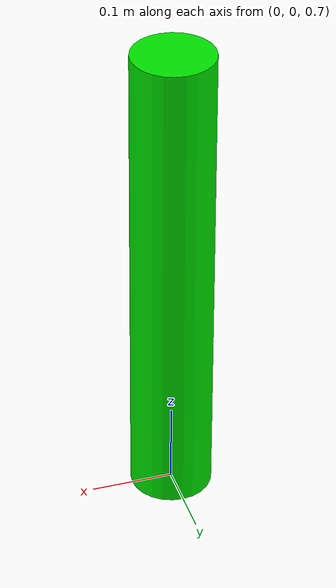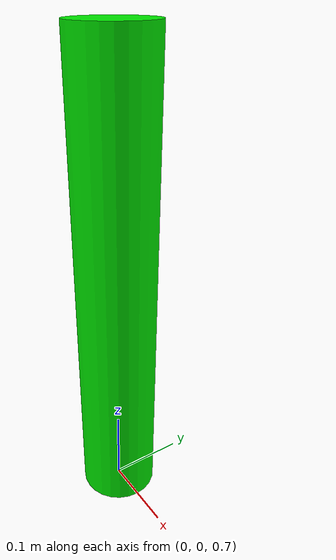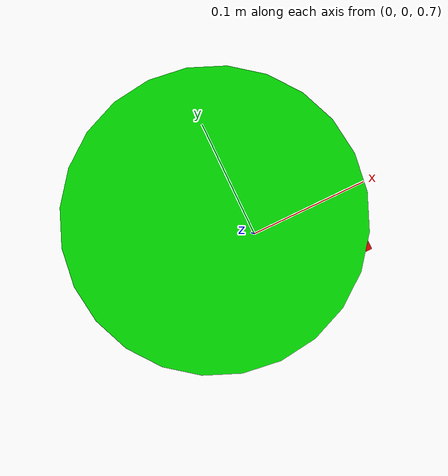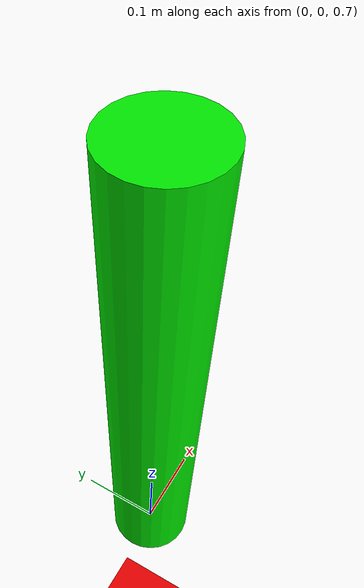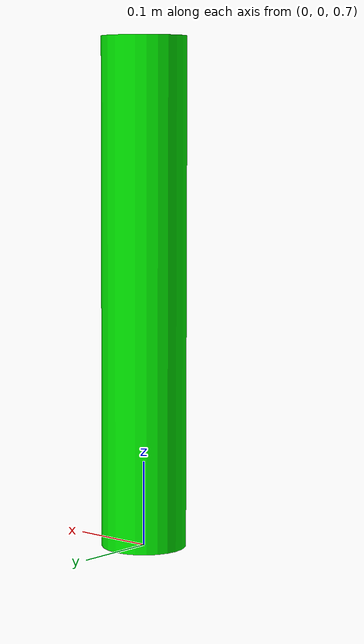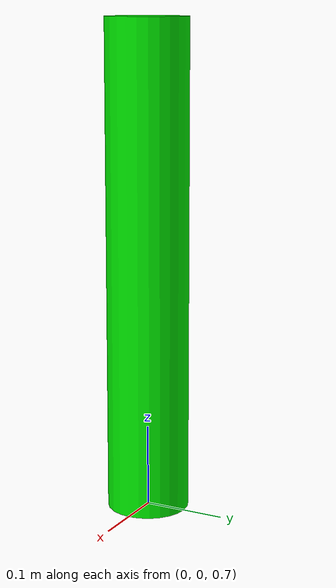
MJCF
<mujoco>
	<compiler angle="degree" />
	<worldbody>
        <light diffuse=".5 .5 .5" pos="0 0 3" dir="0 0 -1"/>
		<geom type="plane" size="1 1 0.1" rgba=".9 0 0 1"/>
		<body name="pendulum" pos="0 0 1" euler="0 180 0">
			<joint name ="pin" type="hinge" pos="0 0 0.3" axis="0 1 0"/>
			<geom type="cylinder" size=".05 .3" rgba="0 .9 0 1" mass="1"/>
		</body>
	</worldbody>
	<actuator>
		<motor joint="pin" name="torque" ctrlrange="-10 10" ctrllimited="true"/>
		<position name="position_servo" joint="pin" kp="5" />
		<velocity name="velocity_servo" joint="pin" kv="0" /> <!-- kv is the velocity gain... in lieu of D control -->
		<!-- ctrllimited is T/F. we define the range via ctrlrange, which is [0 0] by default -->
	</actuator>
	<sensor>
		<jointpos name="jointpos" joint="pin" noise="0.1"/>
		<jointvel name="jointvel" joint="pin" noise="1"/>
	</sensor>
</mujoco>
